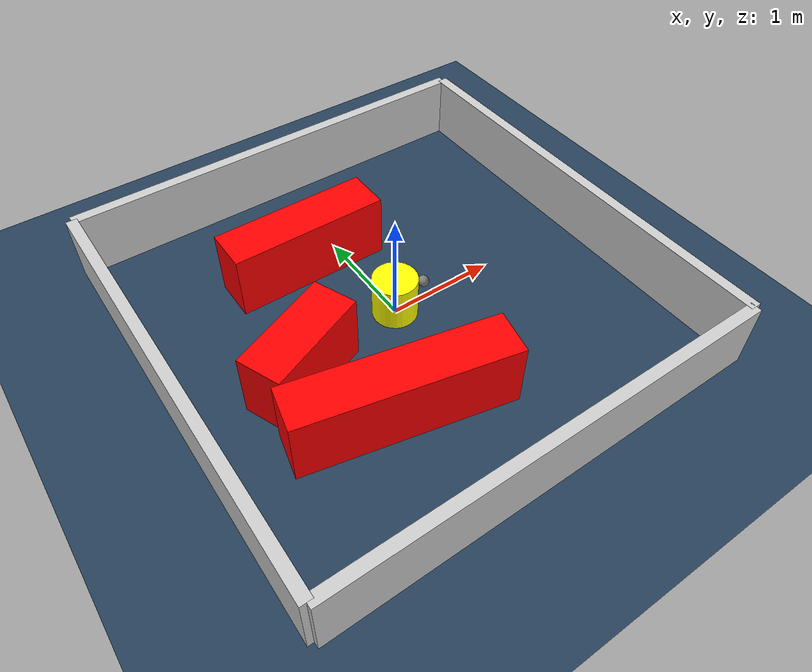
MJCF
<?xml version="1.0" ?>
<mujoco model="generated_environment">
  <option timestep="0.01" integrator="RK4" cone="elliptic"/>
  <default>
    <geom density="1"/>
  </default>
  <asset>
    <texture builtin="gradient" height="3072" rgb1="0.3 0.5 0.7" rgb2="0 0 0" type="skybox" width="512"/>
    <texture builtin="checker" height="300" mark="edge" markrgb="0.8 0.8 0.8" name="groundplane" rgb1="0.2 0.3 0.4" rgb2="0.1 0.2 0.3" type="2d" width="300"/>
    <material name="groundplane" reflectance="0.2" texrepeat="5 5" texture="groundplane" texuniform="true"/>
    <material name="robot" rgba="0.0 1.0 0.0 1"/>
  </asset>
  <worldbody>
    <light dir="0 0 -1" directional="true" pos="0 0 1.5"/>
    <geom condim="4" friction="1.0 0.005 0.001" material="groundplane" name="floor" size="0 0 0.05" type="plane"/>
    <body name="walls">
      <geom name="wall_1" condim="4" pos="-2.0 0.0 0.3" rgba="0.800000011920929 0.800000011920929 0.800000011920929 1.0" size="0.05 2.0 0.3" type="box"/>
      <geom name="wall_2" condim="4" pos="2.0 0.0 0.3" rgba="0.800000011920929 0.800000011920929 0.800000011920929 1.0" size="0.05 2.0 0.3" type="box"/>
      <geom name="wall_3" condim="4" pos="0.0 -2.0 0.3" rgba="0.800000011920929 0.800000011920929 0.800000011920929 1.0" size="2.0 0.05 0.3" type="box"/>
      <geom name="wall_4" condim="4" pos="0.0 2.0 0.3" rgba="0.800000011920929 0.800000011920929 0.800000011920929 1.0" size="2.0 0.05 0.3" type="box"/>
    </body>
    <body name="robot">
      <joint name="joint_x" type="slide" pos="0 0 0" axis="1 0 0"/>
      <joint name="joint_y" type="slide" pos="0 0 0" axis="0 1 0"/>
      <geom name="robot" type="sphere" pos="0.3 0.0 0.2" size="0.05" mass="5." friction="1.0 0.005 0.0001" condim="4" rgba="0.5 0.5 0.5 1.0"/>
      <site name="sensor_ball"/>
    </body>
    <body name="obstacle_movable_1">
      <geom name="obstacle_movable_1" condim="4" pos="0.0 0.0 0.2" euler="0 0 0.0" friction="1.0 0.005 0.001" rgba="1.0 1.0 0.0 1.0" size="0.2 0.2 0.0" type="cylinder" mass="0.1"/>
      <joint type="free"/>
    </body>
    <body name="obstacle_2_static">
      <geom name="obstacle_2_static" condim="4" pos="-0.3707047878292221 0.9085630286095168 0.3" euler="0 0 0.20399986275508208" friction="1.0 0.005 0.001" rgba="1 0 0 1" size="0.7120936274993688 0.2 0.3" type="box"/>
    </body>
    <body name="obstacle_3_static">
      <geom name="obstacle_3_static" condim="4" pos="-1.0190366471870336 -0.19349239566917498 0.3" euler="0 0 202.54556828704926" friction="1.0 0.005 0.001" rgba="1 0 0 1" size="0.4766685600900628 0.2 0.3" type="box"/>
    </body>
    <body name="obstacle_4_static">
      <geom name="obstacle_4_static" condim="4" pos="-0.5877541953465778 -0.9383564585843829 0.3" euler="0 0 347.93768272401536" friction="1.0 0.005 0.001" rgba="1 0 0 1" size="0.9177834895331047 0.2 0.3" type="box"/>
    </body>
  </worldbody>
  <actuator>
    <motor name="actuator_x" joint="joint_x" gear="1" ctrlrange="-1 1"/>
    <motor name="actuator_y" joint="joint_y" gear="1" ctrlrange="-1 1"/>
  </actuator>
</mujoco>
